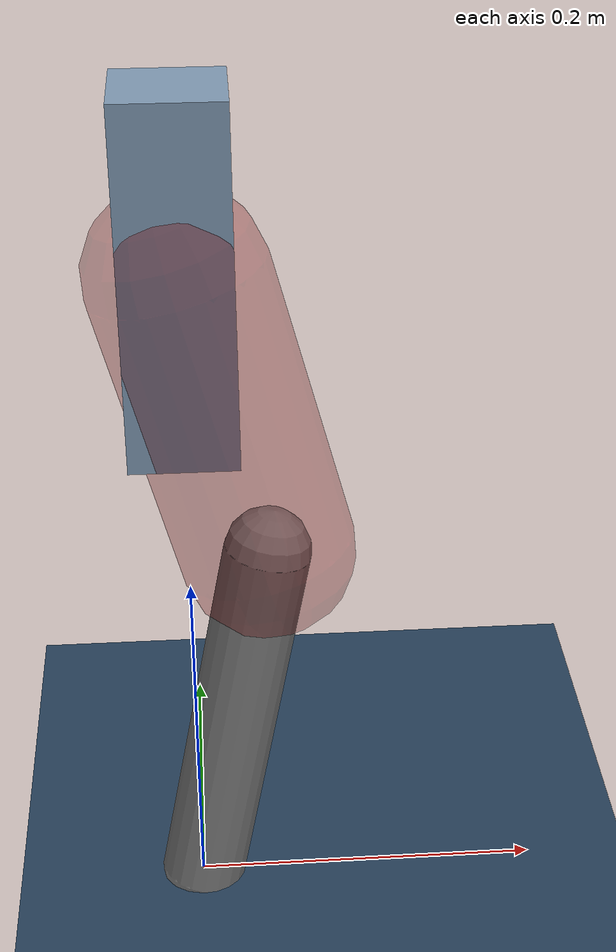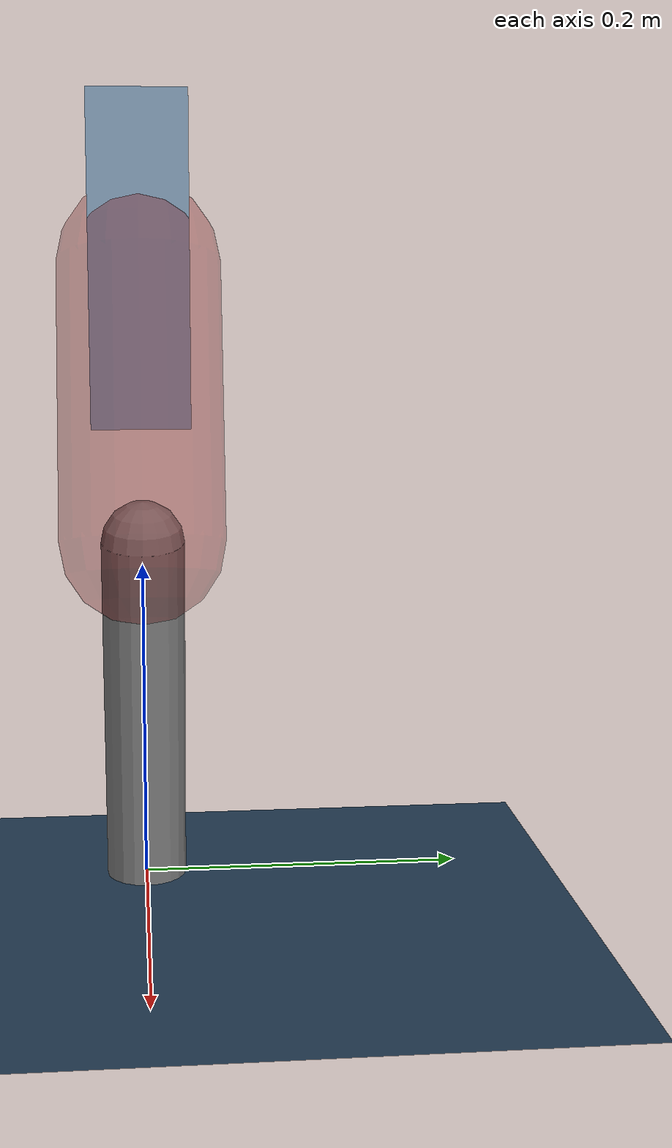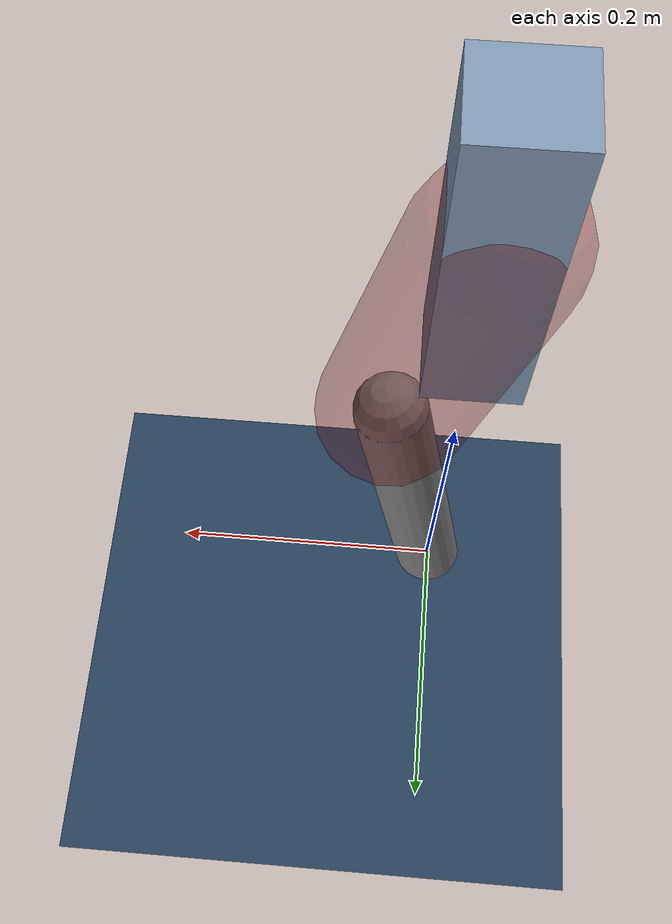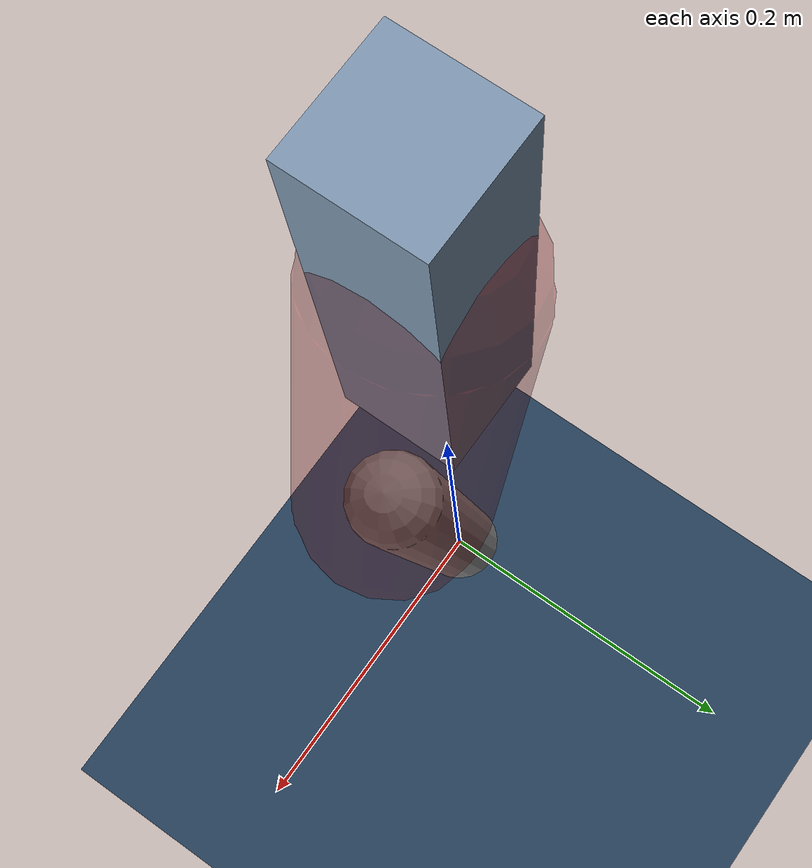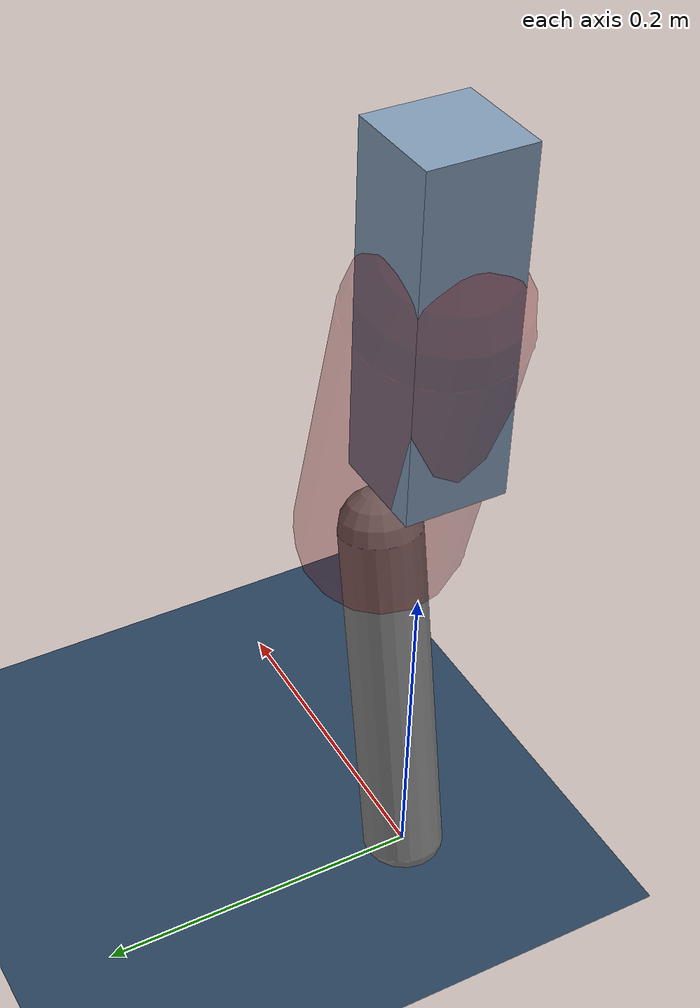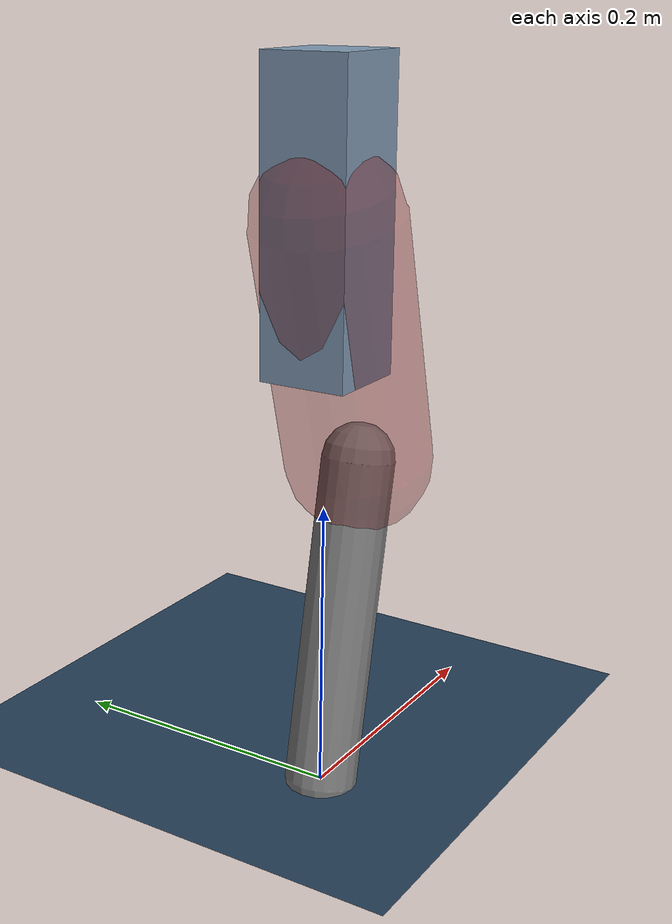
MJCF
<mujoco model="Hopper2D">
	<compiler inertiafromgeom="true" angle="radian" />
	<option timestep="0.001" integrator="implicit" cone="elliptic" solver="Newton" tolerance="1e-10" />

	<default>
		<geom contype="1" conaffinity="1" condim="3" friction="2 0.005 0.0001" solref="0.005 1" />
		<joint limited="true" damping="0.1" />
	</default>

	<asset>
		<texture name="skybox" type="skybox" builtin="gradient" rgb1=".4 .6 .8" rgb2="0 0 0" width="800" height="800" />
		<texture name="grid" type="2d" builtin="checker" rgb1=".1 .2 .3" rgb2=".2 .3 .4" width="300" height="300" mark="edge" markrgb=".2 .3 .4" />
		<material name="ground" texture="grid" texrepeat="1 1" texuniform="true" reflectance="0.1" />
		<material name="leg" rgba="0.5 0.6 0.7 1" />
	</asset>

	<worldbody>

		<geom name="floor" type="plane" size="5 5 0.25" material="ground" />

		<light directional="false" diffuse="0.8 0.8 0.8" specular="0.3 0.3 0.3" pos="0 0 2" dir="0 0 -1" />
		<light mode="targetbodycom" target="base" directional="false" diffuse="0.8 0.8 0.8" specular="0.3 0.3 0.3" pos="0 0 2" dir="0 0 -1" />

		<camera name="fixed" pos="0 -2 1" xyaxes="1 0 0 0 0 1" />
		<camera name="tracking" mode="trackcom" pos="0 -3 1" />

		<body name="root" pos="0 0 0.38822807732309134">
			<joint name="slide_x" type="slide" axis="1 0 0" range="-100 100" />
			<joint name="slide_z" type="slide" axis="0 0 1" range="0 10" />

			<body name="base" pos="0 0 0">
				<geom name="torso" type="box" size="0.03 0.03 0.1" mass="1.948" material="leg" />

				<body name="link1" pos="0 0 0" euler="0 1.3123809705311487 0">
					<joint type="hinge" axis="0 -1 0" pos="0 0 0" name="hinge1" limited="true" range="-3.14 3.14" stiffness="0" damping="0.1" />
					<geom name="thigh" type="capsule" fromto="0 0 0 0.1717853181453294 0 0" size="0.05" rgba="0.5 0 0 0.3" mass="0.6605847635487906" />

					<body name="link2" pos="0.1717853181453294 0 0" euler="0 0.4535166891303696 0">
						<joint type="hinge" axis="0 -1 0" pos="0 0 0" name="hinge2" limited="true" range="-3.14 3.14" stiffness="0" damping="0.1" />
						<geom name="shank" type="capsule" fromto="0 0 0 0.22644275917776194 0 0" size="0.025" mass="0.42305420734220955" />

					</body>
				</body>
			</body>
		</body>
	</worldbody>

	<actuator>
		<motor name="torque1" joint="hinge1" ctrlrange="-46.57444675379491 46.57444675379491" ctrllimited="true" gear="1" />
		<motor name="torque2" joint="hinge2" ctrlrange="-20.069986805499852 20.069986805499852" ctrllimited="true" gear="1" />
	</actuator>
</mujoco>
